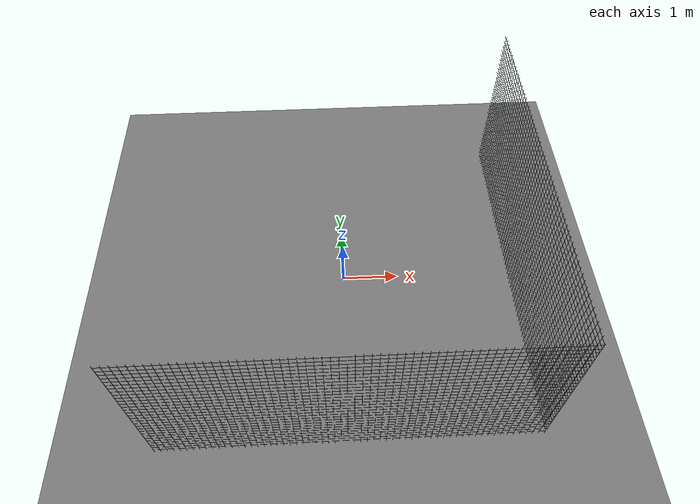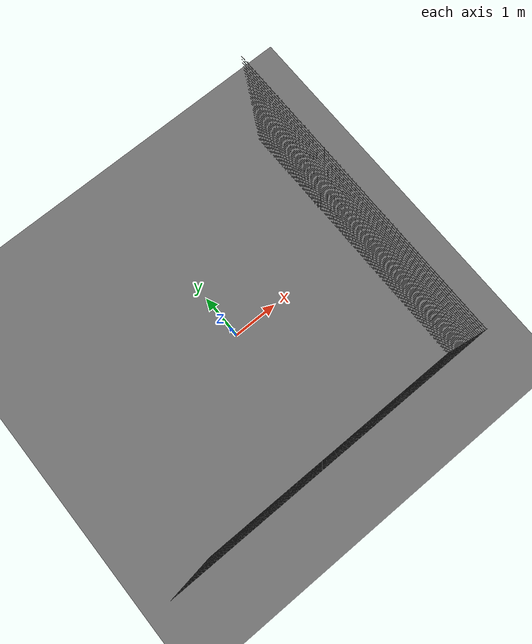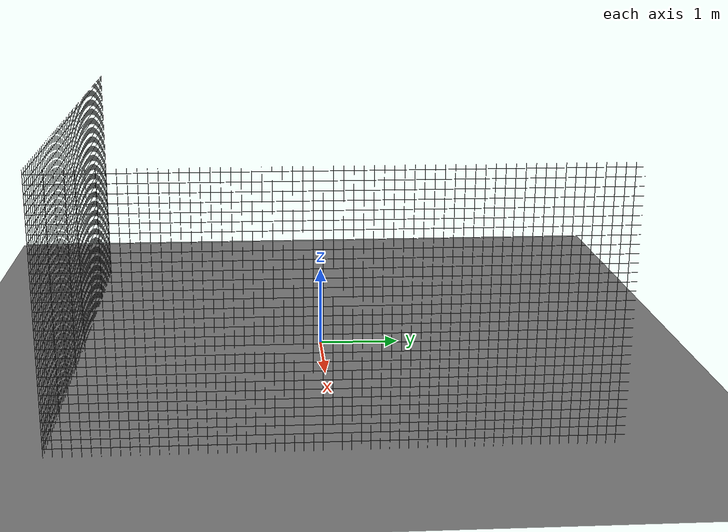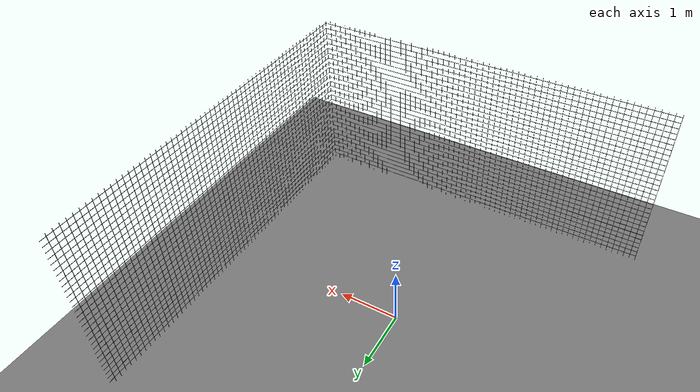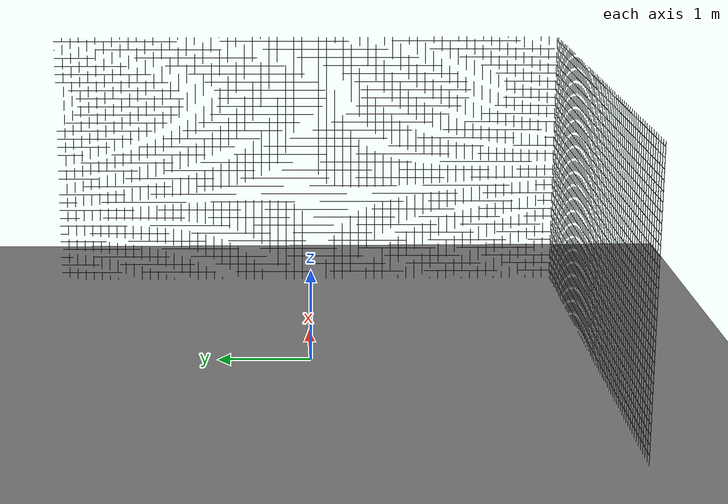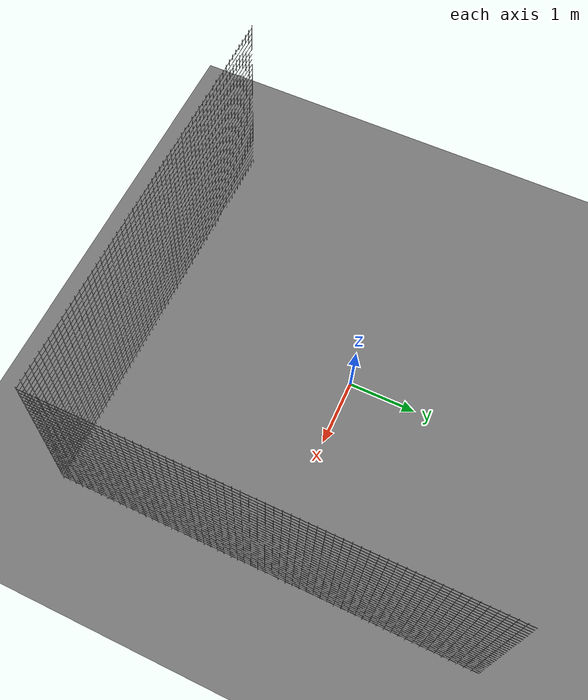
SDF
<sdf version="1.9">
 <world name="ecps295_lowbox_s19">
  <model name="ground_plane">
   <static>true</static>
   <link name="link">
    <collision name="collision">
     <geometry><plane><normal>0 0 1</normal><size>50 50</size></plane></geometry>
    </collision>
    <visual name="visual">
     <geometry><plane><normal>0 0 1</normal><size>50 50</size></plane></geometry>
     <material><ambient>0.5 0.5 0.5 1</ambient><diffuse>0.5 0.5 0.5 1</diffuse></material>
    </visual>
   </link>
  </model>
  <model name="net_s">
   <static>true</static>
   <link name="link">
    <collision name="c">
     <pose>0.000 -3.050 1.525 0 0 0</pose>
     <geometry><box><size>6.100 0.020 3.050</size></box></geometry>
    </collision>
    <visual name="v0">
     <pose>-3.050 -3.050 1.525 0 0 0.0000</pose>
     <geometry><box><size>0.004 0.004 3.050</size></box></geometry>
     <material><ambient>0.16 0.16 0.16 1</ambient><diffuse>0.16 0.16 0.16 1</diffuse></material>
    </visual>
    <visual name="v1">
     <pose>-2.950 -3.050 1.525 0 0 0.0000</pose>
     <geometry><box><size>0.004 0.004 3.050</size></box></geometry>
     <material><ambient>0.16 0.16 0.16 1</ambient><diffuse>0.16 0.16 0.16 1</diffuse></material>
    </visual>
    <visual name="v2">
     <pose>-2.850 -3.050 1.525 0 0 0.0000</pose>
     <geometry><box><size>0.004 0.004 3.050</size></box></geometry>
     <material><ambient>0.16 0.16 0.16 1</ambient><diffuse>0.16 0.16 0.16 1</diffuse></material>
    </visual>
    <visual name="v3">
     <pose>-2.750 -3.050 1.525 0 0 0.0000</pose>
     <geometry><box><size>0.004 0.004 3.050</size></box></geometry>
     <material><ambient>0.16 0.16 0.16 1</ambient><diffuse>0.16 0.16 0.16 1</diffuse></material>
    </visual>
    <visual name="v4">
     <pose>-2.650 -3.050 1.525 0 0 0.0000</pose>
     <geometry><box><size>0.004 0.004 3.050</size></box></geometry>
     <material><ambient>0.16 0.16 0.16 1</ambient><diffuse>0.16 0.16 0.16 1</diffuse></material>
    </visual>
    <visual name="v5">
     <pose>-2.550 -3.050 1.525 0 0 0.0000</pose>
     <geometry><box><size>0.004 0.004 3.050</size></box></geometry>
     <material><ambient>0.16 0.16 0.16 1</ambient><diffuse>0.16 0.16 0.16 1</diffuse></material>
    </visual>
    <visual name="v6">
     <pose>-2.450 -3.050 1.525 0 0 0.0000</pose>
     <geometry><box><size>0.004 0.004 3.050</size></box></geometry>
     <material><ambient>0.16 0.16 0.16 1</ambient><diffuse>0.16 0.16 0.16 1</diffuse></material>
    </visual>
    <visual name="v7">
     <pose>-2.350 -3.050 1.525 0 0 0.0000</pose>
     <geometry><box><size>0.004 0.004 3.050</size></box></geometry>
     <material><ambient>0.16 0.16 0.16 1</ambient><diffuse>0.16 0.16 0.16 1</diffuse></material>
    </visual>
    <visual name="v8">
     <pose>-2.250 -3.050 1.525 0 0 0.0000</pose>
     <geometry><box><size>0.004 0.004 3.050</size></box></geometry>
     <material><ambient>0.16 0.16 0.16 1</ambient><diffuse>0.16 0.16 0.16 1</diffuse></material>
    </visual>
    <visual name="v9">
     <pose>-2.150 -3.050 1.525 0 0 0.0000</pose>
     <geometry><box><size>0.004 0.004 3.050</size></box></geometry>
     <material><ambient>0.16 0.16 0.16 1</ambient><diffuse>0.16 0.16 0.16 1</diffuse></material>
    </visual>
    <visual name="v10">
     <pose>-2.050 -3.050 1.525 0 0 0.0000</pose>
     <geometry><box><size>0.004 0.004 3.050</size></box></geometry>
     <material><ambient>0.16 0.16 0.16 1</ambient><diffuse>0.16 0.16 0.16 1</diffuse></material>
    </visual>
    <visual name="v11">
     <pose>-1.950 -3.050 1.525 0 0 0.0000</pose>
     <geometry><box><size>0.004 0.004 3.050</size></box></geometry>
     <material><ambient>0.16 0.16 0.16 1</ambient><diffuse>0.16 0.16 0.16 1</diffuse></material>
    </visual>
    <visual name="v12">
     <pose>-1.850 -3.050 1.525 0 0 0.0000</pose>
     <geometry><box><size>0.004 0.004 3.050</size></box></geometry>
     <material><ambient>0.16 0.16 0.16 1</ambient><diffuse>0.16 0.16 0.16 1</diffuse></material>
    </visual>
    <visual name="v13">
     <pose>-1.750 -3.050 1.525 0 0 0.0000</pose>
     <geometry><box><size>0.004 0.004 3.050</size></box></geometry>
     <material><ambient>0.16 0.16 0.16 1</ambient><diffuse>0.16 0.16 0.16 1</diffuse></material>
    </visual>
    <visual name="v14">
     <pose>-1.650 -3.050 1.525 0 0 0.0000</pose>
     <geometry><box><size>0.004 0.004 3.050</size></box></geometry>
     <material><ambient>0.16 0.16 0.16 1</ambient><diffuse>0.16 0.16 0.16 1</diffuse></material>
    </visual>
    <visual name="v15">
     <pose>-1.550 -3.050 1.525 0 0 0.0000</pose>
     <geometry><box><size>0.004 0.004 3.050</size></box></geometry>
     <material><ambient>0.16 0.16 0.16 1</ambient><diffuse>0.16 0.16 0.16 1</diffuse></material>
    </visual>
    <visual name="v16">
     <pose>-1.450 -3.050 1.525 0 0 0.0000</pose>
     <geometry><box><size>0.004 0.004 3.050</size></box></geometry>
     <material><ambient>0.16 0.16 0.16 1</ambient><diffuse>0.16 0.16 0.16 1</diffuse></material>
    </visual>
    <visual name="v17">
     <pose>-1.350 -3.050 1.525 0 0 0.0000</pose>
     <geometry><box><size>0.004 0.004 3.050</size></box></geometry>
     <material><ambient>0.16 0.16 0.16 1</ambient><diffuse>0.16 0.16 0.16 1</diffuse></material>
    </visual>
    <visual name="v18">
     <pose>-1.250 -3.050 1.525 0 0 0.0000</pose>
     <geometry><box><size>0.004 0.004 3.050</size></box></geometry>
     <material><ambient>0.16 0.16 0.16 1</ambient><diffuse>0.16 0.16 0.16 1</diffuse></material>
    </visual>
    <visual name="v19">
     <pose>-1.150 -3.050 1.525 0 0 0.0000</pose>
     <geometry><box><size>0.004 0.004 3.050</size></box></geometry>
     <material><ambient>0.16 0.16 0.16 1</ambient><diffuse>0.16 0.16 0.16 1</diffuse></material>
    </visual>
    <visual name="v20">
     <pose>-1.050 -3.050 1.525 0 0 0.0000</pose>
     <geometry><box><size>0.004 0.004 3.050</size></box></geometry>
     <material><ambient>0.16 0.16 0.16 1</ambient><diffuse>0.16 0.16 0.16 1</diffuse></material>
    </visual>
    <visual name="v21">
     <pose>-0.950 -3.050 1.525 0 0 0.0000</pose>
     <geometry><box><size>0.004 0.004 3.050</size></box></geometry>
     <material><ambient>0.16 0.16 0.16 1</ambient><diffuse>0.16 0.16 0.16 1</diffuse></material>
    </visual>
    <visual name="v22">
     <pose>-0.850 -3.050 1.525 0 0 0.0000</pose>
     <geometry><box><size>0.004 0.004 3.050</size></box></geometry>
     <material><ambient>0.16 0.16 0.16 1</ambient><diffuse>0.16 0.16 0.16 1</diffuse></material>
    </visual>
    <visual name="v23">
     <pose>-0.750 -3.050 1.525 0 0 0.0000</pose>
     <geometry><box><size>0.004 0.004 3.050</size></box></geometry>
     <material><ambient>0.16 0.16 0.16 1</ambient><diffuse>0.16 0.16 0.16 1</diffuse></material>
    </visual>
    <visual name="v24">
     <pose>-0.650 -3.050 1.525 0 0 0.0000</pose>
     <geometry><box><size>0.004 0.004 3.050</size></box></geometry>
     <material><ambient>0.16 0.16 0.16 1</ambient><diffuse>0.16 0.16 0.16 1</diffuse></material>
    </visual>
    <visual name="v25">
     <pose>-0.550 -3.050 1.525 0 0 0.0000</pose>
     <geometry><box><size>0.004 0.004 3.050</size></box></geometry>
     <material><ambient>0.16 0.16 0.16 1</ambient><diffuse>0.16 0.16 0.16 1</diffuse></material>
    </visual>
    <visual name="v26">
     <pose>-0.450 -3.050 1.525 0 0 0.0000</pose>
     <geometry><box><size>0.004 0.004 3.050</size></box></geometry>
     <material><ambient>0.16 0.16 0.16 1</ambient><diffuse>0.16 0.16 0.16 1</diffuse></material>
    </visual>
    <visual name="v27">
     <pose>-0.350 -3.050 1.525 0 0 0.0000</pose>
     <geometry><box><size>0.004 0.004 3.050</size></box></geometry>
     <material><ambient>0.16 0.16 0.16 1</ambient><diffuse>0.16 0.16 0.16 1</diffuse></material>
    </visual>
    <visual name="v28">
     <pose>-0.250 -3.050 1.525 0 0 0.0000</pose>
     <geometry><box><size>0.004 0.004 3.050</size></box></geometry>
     <material><ambient>0.16 0.16 0.16 1</ambient><diffuse>0.16 0.16 0.16 1</diffuse></material>
    </visual>
    <visual name="v29">
     <pose>-0.150 -3.050 1.525 0 0 0.0000</pose>
     <geometry><box><size>0.004 0.004 3.050</size></box></geometry>
     <material><ambient>0.16 0.16 0.16 1</ambient><diffuse>0.16 0.16 0.16 1</diffuse></material>
    </visual>
    <visual name="v30">
     <pose>-0.050 -3.050 1.525 0 0 0.0000</pose>
     <geometry><box><size>0.004 0.004 3.050</size></box></geometry>
     <material><ambient>0.16 0.16 0.16 1</ambient><diffuse>0.16 0.16 0.16 1</diffuse></material>
    </visual>
    <visual name="v31">
     <pose>0.050 -3.050 1.525 0 0 0.0000</pose>
     <geometry><box><size>0.004 0.004 3.050</size></box></geometry>
     <material><ambient>0.16 0.16 0.16 1</ambient><diffuse>0.16 0.16 0.16 1</diffuse></material>
    </visual>
    <visual name="v32">
     <pose>0.150 -3.050 1.525 0 0 0.0000</pose>
     <geometry><box><size>0.004 0.004 3.050</size></box></geometry>
     <material><ambient>0.16 0.16 0.16 1</ambient><diffuse>0.16 0.16 0.16 1</diffuse></material>
    </visual>
    <visual name="v33">
     <pose>0.250 -3.050 1.525 0 0 0.0000</pose>
     <geometry><box><size>0.004 0.004 3.050</size></box></geometry>
     <material><ambient>0.16 0.16 0.16 1</ambient><diffuse>0.16 0.16 0.16 1</diffuse></material>
    </visual>
    <visual name="v34">
     <pose>0.350 -3.050 1.525 0 0 0.0000</pose>
     <geometry><box><size>0.004 0.004 3.050</size></box></geometry>
     <material><ambient>0.16 0.16 0.16 1</ambient><diffuse>0.16 0.16 0.16 1</diffuse></material>
    </visual>
    <visual name="v35">
     <pose>0.450 -3.050 1.525 0 0 0.0000</pose>
     <geometry><box><size>0.004 0.004 3.050</size></box></geometry>
     <material><ambient>0.16 0.16 0.16 1</ambient><diffuse>0.16 0.16 0.16 1</diffuse></material>
    </visual>
    <visual name="v36">
     <pose>0.550 -3.050 1.525 0 0 0.0000</pose>
     <geometry><box><size>0.004 0.004 3.050</size></box></geometry>
     <material><ambient>0.16 0.16 0.16 1</ambient><diffuse>0.16 0.16 0.16 1</diffuse></material>
    </visual>
    <visual name="v37">
     <pose>0.650 -3.050 1.525 0 0 0.0000</pose>
     <geometry><box><size>0.004 0.004 3.050</size></box></geometry>
     <material><ambient>0.16 0.16 0.16 1</ambient><diffuse>0.16 0.16 0.16 1</diffuse></material>
    </visual>
    <visual name="v38">
     <pose>0.750 -3.050 1.525 0 0 0.0000</pose>
     <geometry><box><size>0.004 0.004 3.050</size></box></geometry>
     <material><ambient>0.16 0.16 0.16 1</ambient><diffuse>0.16 0.16 0.16 1</diffuse></material>
    </visual>
    <visual name="v39">
     <pose>0.850 -3.050 1.525 0 0 0.0000</pose>
     <geometry><box><size>0.004 0.004 3.050</size></box></geometry>
     <material><ambient>0.16 0.16 0.16 1</ambient><diffuse>0.16 0.16 0.16 1</diffuse></material>
    </visual>
    <visual name="v40">
     <pose>0.950 -3.050 1.525 0 0 0.0000</pose>
     <geometry><box><size>0.004 0.004 3.050</size></box></geometry>
     <material><ambient>0.16 0.16 0.16 1</ambient><diffuse>0.16 0.16 0.16 1</diffuse></material>
    </visual>
    <visual name="v41">
     <pose>1.050 -3.050 1.525 0 0 0.0000</pose>
     <geometry><box><size>0.004 0.004 3.050</size></box></geometry>
     <material><ambient>0.16 0.16 0.16 1</ambient><diffuse>0.16 0.16 0.16 1</diffuse></material>
    </visual>
    <visual name="v42">
     <pose>1.150 -3.050 1.525 0 0 0.0000</pose>
     <geometry><box><size>0.004 0.004 3.050</size></box></geometry>
     <material><ambient>0.16 0.16 0.16 1</ambient><diffuse>0.16 0.16 0.16 1</diffuse></material>
    </visual>
    <visual name="v43">
     <pose>1.250 -3.050 1.525 0 0 0.0000</pose>
     <geometry><box><size>0.004 0.004 3.050</size></box></geometry>
     <material><ambient>0.16 0.16 0.16 1</ambient><diffuse>0.16 0.16 0.16 1</diffuse></material>
    </visual>
    <visual name="v44">
     <pose>1.350 -3.050 1.525 0 0 0.0000</pose>
     <geometry><box><size>0.004 0.004 3.050</size></box></geometry>
     <material><ambient>0.16 0.16 0.16 1</ambient><diffuse>0.16 0.16 0.16 1</diffuse></material>
    </visual>
    <visual name="v45">
     <pose>1.450 -3.050 1.525 0 0 0.0000</pose>
     <geometry><box><size>0.004 0.004 3.050</size></box></geometry>
     <material><ambient>0.16 0.16 0.16 1</ambient><diffuse>0.16 0.16 0.16 1</diffuse></material>
    </visual>
    <visual name="v46">
     <pose>1.550 -3.050 1.525 0 0 0.0000</pose>
     <geometry><box><size>0.004 0.004 3.050</size></box></geometry>
     <material><ambient>0.16 0.16 0.16 1</ambient><diffuse>0.16 0.16 0.16 1</diffuse></material>
    </visual>
    <visual name="v47">
     <pose>1.650 -3.050 1.525 0 0 0.0000</pose>
     <geometry><box><size>0.004 0.004 3.050</size></box></geometry>
     <material><ambient>0.16 0.16 0.16 1</ambient><diffuse>0.16 0.16 0.16 1</diffuse></material>
    </visual>
    <visual name="v48">
     <pose>1.750 -3.050 1.525 0 0 0.0000</pose>
     <geometry><box><size>0.004 0.004 3.050</size></box></geometry>
     <material><ambient>0.16 0.16 0.16 1</ambient><diffuse>0.16 0.16 0.16 1</diffuse></material>
    </visual>
    <visual name="v49">
     <pose>1.850 -3.050 1.525 0 0 0.0000</pose>
     <geometry><box><size>0.004 0.004 3.050</size></box></geometry>
     <material><ambient>0.16 0.16 0.16 1</ambient><diffuse>0.16 0.16 0.16 1</diffuse></material>
    </visual>
    <visual name="v50">
     <pose>1.950 -3.050 1.525 0 0 0.0000</pose>
     <geometry><box><size>0.004 0.004 3.050</size></box></geometry>
     <material><ambient>0.16 0.16 0.16 1</ambient><diffuse>0.16 0.16 0.16 1</diffuse></material>
    </visual>
    <visual name="v51">
     <pose>2.050 -3.050 1.525 0 0 0.0000</pose>
     <geometry><box><size>0.004 0.004 3.050</size></box></geometry>
     <material><ambient>0.16 0.16 0.16 1</ambient><diffuse>0.16 0.16 0.16 1</diffuse></material>
    </visual>
    <visual name="v52">
     <pose>2.150 -3.050 1.525 0 0 0.0000</pose>
     <geometry><box><size>0.004 0.004 3.050</size></box></geometry>
     <material><ambient>0.16 0.16 0.16 1</ambient><diffuse>0.16 0.16 0.16 1</diffuse></material>
    </visual>
    <visual name="v53">
     <pose>2.250 -3.050 1.525 0 0 0.0000</pose>
     <geometry><box><size>0.004 0.004 3.050</size></box></geometry>
     <material><ambient>0.16 0.16 0.16 1</ambient><diffuse>0.16 0.16 0.16 1</diffuse></material>
    </visual>
    <visual name="v54">
     <pose>2.350 -3.050 1.525 0 0 0.0000</pose>
     <geometry><box><size>0.004 0.004 3.050</size></box></geometry>
     <material><ambient>0.16 0.16 0.16 1</ambient><diffuse>0.16 0.16 0.16 1</diffuse></material>
    </visual>
    <visual name="v55">
     <pose>2.450 -3.050 1.525 0 0 0.0000</pose>
     <geometry><box><size>0.004 0.004 3.050</size></box></geometry>
     <material><ambient>0.16 0.16 0.16 1</ambient><diffuse>0.16 0.16 0.16 1</diffuse></material>
    </visual>
    <visual name="v56">
     <pose>2.550 -3.050 1.525 0 0 0.0000</pose>
     <geometry><box><size>0.004 0.004 3.050</size></box></geometry>
     <material><ambient>0.16 0.16 0.16 1</ambient><diffuse>0.16 0.16 0.16 1</diffuse></material>
    </visual>
    <visual name="v57">
     <pose>2.650 -3.050 1.525 0 0 0.0000</pose>
     <geometry><box><size>0.004 0.004 3.050</size></box></geometry>
     <material><ambient>0.16 0.16 0.16 1</ambient><diffuse>0.16 0.16 0.16 1</diffuse></material>
    </visual>
    <visual name="v58">
     <pose>2.750 -3.050 1.525 0 0 0.0000</pose>
     <geometry><box><size>0.004 0.004 3.050</size></box></geometry>
     <material><ambient>0.16 0.16 0.16 1</ambient><diffuse>0.16 0.16 0.16 1</diffuse></material>
    </visual>
    <visual name="v59">
     <pose>2.850 -3.050 1.525 0 0 0.0000</pose>
     <geometry><box><size>0.004 0.004 3.050</size></box></geometry>
     <material><ambient>0.16 0.16 0.16 1</ambient><diffuse>0.16 0.16 0.16 1</diffuse></material>
    </visual>
    <visual name="v60">
     <pose>2.950 -3.050 1.525 0 0 0.0000</pose>
     <geometry><box><size>0.004 0.004 3.050</size></box></geometry>
     <material><ambient>0.16 0.16 0.16 1</ambient><diffuse>0.16 0.16 0.16 1</diffuse></material>
    </visual>
    <visual name="h1">
     <pose>0.000 -3.050 0.100 0 0 0.0000</pose>
     <geometry><box><size>6.100 0.004 0.004</size></box></geometry>
     <material><ambient>0.16 0.16 0.16 1</ambient><diffuse>0.16 0.16 0.16 1</diffuse></material>
    </visual>
    <visual name="h2">
     <pose>0.000 -3.050 0.200 0 0 0.0000</pose>
     <geometry><box><size>6.100 0.004 0.004</size></box></geometry>
     <material><ambient>0.16 0.16 0.16 1</ambient><diffuse>0.16 0.16 0.16 1</diffuse></material>
    </visual>
    <visual name="h3">
     <pose>0.000 -3.050 0.300 0 0 0.0000</pose>
     <geometry><box><size>6.100 0.004 0.004</size></box></geometry>
     <material><ambient>0.16 0.16 0.16 1</ambient><diffuse>0.16 0.16 0.16 1</diffuse></material>
    </visual>
    <visual name="h4">
     <pose>0.000 -3.050 0.400 0 0 0.0000</pose>
     <geometry><box><size>6.100 0.004 0.004</size></box></geometry>
     <material><ambient>0.16 0.16 0.16 1</ambient><diffuse>0.16 0.16 0.16 1</diffuse></material>
    </visual>
    <visual name="h5">
     <pose>0.000 -3.050 0.500 0 0 0.0000</pose>
     <geometry><box><size>6.100 0.004 0.004</size></box></geometry>
     <material><ambient>0.16 0.16 0.16 1</ambient><diffuse>0.16 0.16 0.16 1</diffuse></material>
    </visual>
    <visual name="h6">
     <pose>0.000 -3.050 0.600 0 0 0.0000</pose>
     <geometry><box><size>6.100 0.004 0.004</size></box></geometry>
     <material><ambient>0.16 0.16 0.16 1</ambient><diffuse>0.16 0.16 0.16 1</diffuse></material>
    </visual>
    <visual name="h7">
     <pose>0.000 -3.050 0.700 0 0 0.0000</pose>
     <geometry><box><size>6.100 0.004 0.004</size></box></geometry>
     <material><ambient>0.16 0.16 0.16 1</ambient><diffuse>0.16 0.16 0.16 1</diffuse></material>
    </visual>
    <visual name="h8">
     <pose>0.000 -3.050 0.800 0 0 0.0000</pose>
     <geometry><box><size>6.100 0.004 0.004</size></box></geometry>
     <material><ambient>0.16 0.16 0.16 1</ambient><diffuse>0.16 0.16 0.16 1</diffuse></material>
    </visual>
    <visual name="h9">
     <pose>0.000 -3.050 0.900 0 0 0.0000</pose>
     <geometry><box><size>6.100 0.004 0.004</size></box></geometry>
     <material><ambient>0.16 0.16 0.16 1</ambient><diffuse>0.16 0.16 0.16 1</diffuse></material>
    </visual>
    <visual name="h10">
     <pose>0.000 -3.050 1.000 0 0 0.0000</pose>
     <geometry><box><size>6.100 0.004 0.004</size></box></geometry>
     <material><ambient>0.16 0.16 0.16 1</ambient><diffuse>0.16 0.16 0.16 1</diffuse></material>
    </visual>
    <visual name="h11">
     <pose>0.000 -3.050 1.100 0 0 0.0000</pose>
     <geometry><box><size>6.100 0.004 0.004</size></box></geometry>
     <material><ambient>0.16 0.16 0.16 1</ambient><diffuse>0.16 0.16 0.16 1</diffuse></material>
    </visual>
    <visual name="h12">
     <pose>0.000 -3.050 1.200 0 0 0.0000</pose>
     <geometry><box><size>6.100 0.004 0.004</size></box></geometry>
     <material><ambient>0.16 0.16 0.16 1</ambient><diffuse>0.16 0.16 0.16 1</diffuse></material>
    </visual>
    <visual name="h13">
     <pose>0.000 -3.050 1.300 0 0 0.0000</pose>
     <geometry><box><size>6.100 0.004 0.004</size></box></geometry>
     <material><ambient>0.16 0.16 0.16 1</ambient><diffuse>0.16 0.16 0.16 1</diffuse></material>
    </visual>
    <visual name="h14">
     <pose>0.000 -3.050 1.400 0 0 0.0000</pose>
     <geometry><box><size>6.100 0.004 0.004</size></box></geometry>
     <material><ambient>0.16 0.16 0.16 1</ambient><diffuse>0.16 0.16 0.16 1</diffuse></material>
    </visual>
    <visual name="h15">
     <pose>0.000 -3.050 1.500 0 0 0.0000</pose>
     <geometry><box><size>6.100 0.004 0.004</size></box></geometry>
     <material><ambient>0.16 0.16 0.16 1</ambient><diffuse>0.16 0.16 0.16 1</diffuse></material>
    </visual>
    <visual name="h16">
     <pose>0.000 -3.050 1.600 0 0 0.0000</pose>
     <geometry><box><size>6.100 0.004 0.004</size></box></geometry>
     <material><ambient>0.16 0.16 0.16 1</ambient><diffuse>0.16 0.16 0.16 1</diffuse></material>
    </visual>
    <visual name="h17">
     <pose>0.000 -3.050 1.700 0 0 0.0000</pose>
     <geometry><box><size>6.100 0.004 0.004</size></box></geometry>
     <material><ambient>0.16 0.16 0.16 1</ambient><diffuse>0.16 0.16 0.16 1</diffuse></material>
    </visual>
    <visual name="h18">
     <pose>0.000 -3.050 1.800 0 0 0.0000</pose>
     <geometry><box><size>6.100 0.004 0.004</size></box></geometry>
     <material><ambient>0.16 0.16 0.16 1</ambient><diffuse>0.16 0.16 0.16 1</diffuse></material>
    </visual>
    <visual name="h19">
     <pose>0.000 -3.050 1.900 0 0 0.0000</pose>
     <geometry><box><size>6.100 0.004 0.004</size></box></geometry>
     <material><ambient>0.16 0.16 0.16 1</ambient><diffuse>0.16 0.16 0.16 1</diffuse></material>
    </visual>
    <visual name="h20">
     <pose>0.000 -3.050 2.000 0 0 0.0000</pose>
     <geometry><box><size>6.100 0.004 0.004</size></box></geometry>
     <material><ambient>0.16 0.16 0.16 1</ambient><diffuse>0.16 0.16 0.16 1</diffuse></material>
    </visual>
    <visual name="h21">
     <pose>0.000 -3.050 2.100 0 0 0.0000</pose>
     <geometry><box><size>6.100 0.004 0.004</size></box></geometry>
     <material><ambient>0.16 0.16 0.16 1</ambient><diffuse>0.16 0.16 0.16 1</diffuse></material>
    </visual>
    <visual name="h22">
     <pose>0.000 -3.050 2.200 0 0 0.0000</pose>
     <geometry><box><size>6.100 0.004 0.004</size></box></geometry>
     <material><ambient>0.16 0.16 0.16 1</ambient><diffuse>0.16 0.16 0.16 1</diffuse></material>
    </visual>
    <visual name="h23">
     <pose>0.000 -3.050 2.300 0 0 0.0000</pose>
     <geometry><box><size>6.100 0.004 0.004</size></box></geometry>
     <material><ambient>0.16 0.16 0.16 1</ambient><diffuse>0.16 0.16 0.16 1</diffuse></material>
    </visual>
    <visual name="h24">
     <pose>0.000 -3.050 2.400 0 0 0.0000</pose>
     <geometry><box><size>6.100 0.004 0.004</size></box></geometry>
     <material><ambient>0.16 0.16 0.16 1</ambient><diffuse>0.16 0.16 0.16 1</diffuse></material>
    </visual>
    <visual name="h25">
     <pose>0.000 -3.050 2.500 0 0 0.0000</pose>
     <geometry><box><size>6.100 0.004 0.004</size></box></geometry>
     <material><ambient>0.16 0.16 0.16 1</ambient><diffuse>0.16 0.16 0.16 1</diffuse></material>
    </visual>
    <visual name="h26">
     <pose>0.000 -3.050 2.600 0 0 0.0000</pose>
     <geometry><box><size>6.100 0.004 0.004</size></box></geometry>
     <material><ambient>0.16 0.16 0.16 1</ambient><diffuse>0.16 0.16 0.16 1</diffuse></material>
    </visual>
    <visual name="h27">
     <pose>0.000 -3.050 2.700 0 0 0.0000</pose>
     <geometry><box><size>6.100 0.004 0.004</size></box></geometry>
     <material><ambient>0.16 0.16 0.16 1</ambient><diffuse>0.16 0.16 0.16 1</diffuse></material>
    </visual>
    <visual name="h28">
     <pose>0.000 -3.050 2.800 0 0 0.0000</pose>
     <geometry><box><size>6.100 0.004 0.004</size></box></geometry>
     <material><ambient>0.16 0.16 0.16 1</ambient><diffuse>0.16 0.16 0.16 1</diffuse></material>
    </visual>
    <visual name="h29">
     <pose>0.000 -3.050 2.900 0 0 0.0000</pose>
     <geometry><box><size>6.100 0.004 0.004</size></box></geometry>
     <material><ambient>0.16 0.16 0.16 1</ambient><diffuse>0.16 0.16 0.16 1</diffuse></material>
    </visual>
    <visual name="h30">
     <pose>0.000 -3.050 3.000 0 0 0.0000</pose>
     <geometry><box><size>6.100 0.004 0.004</size></box></geometry>
     <material><ambient>0.16 0.16 0.16 1</ambient><diffuse>0.16 0.16 0.16 1</diffuse></material>
    </visual>
   </link>
  </model>
  <model name="net_e">
   <static>true</static>
   <link name="link">
    <collision name="c">
     <pose>3.050 0.000 1.525 0 0 0</pose>
     <geometry><box><size>0.020 6.100 3.050</size></box></geometry>
    </collision>
    <visual name="v0">
     <pose>3.050 -3.050 1.525 0 0 0.0000</pose>
     <geometry><box><size>0.004 0.004 3.050</size></box></geometry>
     <material><ambient>0.16 0.16 0.16 1</ambient><diffuse>0.16 0.16 0.16 1</diffuse></material>
    </visual>
    <visual name="v1">
     <pose>3.050 -2.950 1.525 0 0 0.0000</pose>
     <geometry><box><size>0.004 0.004 3.050</size></box></geometry>
     <material><ambient>0.16 0.16 0.16 1</ambient><diffuse>0.16 0.16 0.16 1</diffuse></material>
    </visual>
    <visual name="v2">
     <pose>3.050 -2.850 1.525 0 0 0.0000</pose>
     <geometry><box><size>0.004 0.004 3.050</size></box></geometry>
     <material><ambient>0.16 0.16 0.16 1</ambient><diffuse>0.16 0.16 0.16 1</diffuse></material>
    </visual>
    <visual name="v3">
     <pose>3.050 -2.750 1.525 0 0 0.0000</pose>
     <geometry><box><size>0.004 0.004 3.050</size></box></geometry>
     <material><ambient>0.16 0.16 0.16 1</ambient><diffuse>0.16 0.16 0.16 1</diffuse></material>
    </visual>
    <visual name="v4">
     <pose>3.050 -2.650 1.525 0 0 0.0000</pose>
     <geometry><box><size>0.004 0.004 3.050</size></box></geometry>
     <material><ambient>0.16 0.16 0.16 1</ambient><diffuse>0.16 0.16 0.16 1</diffuse></material>
    </visual>
    <visual name="v5">
     <pose>3.050 -2.550 1.525 0 0 0.0000</pose>
     <geometry><box><size>0.004 0.004 3.050</size></box></geometry>
     <material><ambient>0.16 0.16 0.16 1</ambient><diffuse>0.16 0.16 0.16 1</diffuse></material>
    </visual>
    <visual name="v6">
     <pose>3.050 -2.450 1.525 0 0 0.0000</pose>
     <geometry><box><size>0.004 0.004 3.050</size></box></geometry>
     <material><ambient>0.16 0.16 0.16 1</ambient><diffuse>0.16 0.16 0.16 1</diffuse></material>
    </visual>
    <visual name="v7">
     <pose>3.050 -2.350 1.525 0 0 0.0000</pose>
     <geometry><box><size>0.004 0.004 3.050</size></box></geometry>
     <material><ambient>0.16 0.16 0.16 1</ambient><diffuse>0.16 0.16 0.16 1</diffuse></material>
    </visual>
    <visual name="v8">
     <pose>3.050 -2.250 1.525 0 0 0.0000</pose>
     <geometry><box><size>0.004 0.004 3.050</size></box></geometry>
     <material><ambient>0.16 0.16 0.16 1</ambient><diffuse>0.16 0.16 0.16 1</diffuse></material>
    </visual>
    <visual name="v9">
     <pose>3.050 -2.150 1.525 0 0 0.0000</pose>
     <geometry><box><size>0.004 0.004 3.050</size></box></geometry>
     <material><ambient>0.16 0.16 0.16 1</ambient><diffuse>0.16 0.16 0.16 1</diffuse></material>
    </visual>
    <visual name="v10">
     <pose>3.050 -2.050 1.525 0 0 0.0000</pose>
     <geometry><box><size>0.004 0.004 3.050</size></box></geometry>
     <material><ambient>0.16 0.16 0.16 1</ambient><diffuse>0.16 0.16 0.16 1</diffuse></material>
    </visual>
    <visual name="v11">
     <pose>3.050 -1.950 1.525 0 0 0.0000</pose>
     <geometry><box><size>0.004 0.004 3.050</size></box></geometry>
     <material><ambient>0.16 0.16 0.16 1</ambient><diffuse>0.16 0.16 0.16 1</diffuse></material>
    </visual>
    <visual name="v12">
     <pose>3.050 -1.850 1.525 0 0 0.0000</pose>
     <geometry><box><size>0.004 0.004 3.050</size></box></geometry>
     <material><ambient>0.16 0.16 0.16 1</ambient><diffuse>0.16 0.16 0.16 1</diffuse></material>
    </visual>
    <visual name="v13">
     <pose>3.050 -1.750 1.525 0 0 0.0000</pose>
     <geometry><box><size>0.004 0.004 3.050</size></box></geometry>
     <material><ambient>0.16 0.16 0.16 1</ambient><diffuse>0.16 0.16 0.16 1</diffuse></material>
    </visual>
    <visual name="v14">
     <pose>3.050 -1.650 1.525 0 0 0.0000</pose>
     <geometry><box><size>0.004 0.004 3.050</size></box></geometry>
     <material><ambient>0.16 0.16 0.16 1</ambient><diffuse>0.16 0.16 0.16 1</diffuse></material>
    </visual>
    <visual name="v15">
     <pose>3.050 -1.550 1.525 0 0 0.0000</pose>
     <geometry><box><size>0.004 0.004 3.050</size></box></geometry>
     <material><ambient>0.16 0.16 0.16 1</ambient><diffuse>0.16 0.16 0.16 1</diffuse></material>
    </visual>
    <visual name="v16">
     <pose>3.050 -1.450 1.525 0 0 0.0000</pose>
     <geometry><box><size>0.004 0.004 3.050</size></box></geometry>
     <material><ambient>0.16 0.16 0.16 1</ambient><diffuse>0.16 0.16 0.16 1</diffuse></material>
    </visual>
    <visual name="v17">
     <pose>3.050 -1.350 1.525 0 0 0.0000</pose>
     <geometry><box><size>0.004 0.004 3.050</size></box></geometry>
     <material><ambient>0.16 0.16 0.16 1</ambient><diffuse>0.16 0.16 0.16 1</diffuse></material>
    </visual>
    <visual name="v18">
     <pose>3.050 -1.250 1.525 0 0 0.0000</pose>
     <geometry><box><size>0.004 0.004 3.050</size></box></geometry>
     <material><ambient>0.16 0.16 0.16 1</ambient><diffuse>0.16 0.16 0.16 1</diffuse></material>
    </visual>
    <visual name="v19">
     <pose>3.050 -1.150 1.525 0 0 0.0000</pose>
     <geometry><box><size>0.004 0.004 3.050</size></box></geometry>
     <material><ambient>0.16 0.16 0.16 1</ambient><diffuse>0.16 0.16 0.16 1</diffuse></material>
    </visual>
    <visual name="v20">
     <pose>3.050 -1.050 1.525 0 0 0.0000</pose>
     <geometry><box><size>0.004 0.004 3.050</size></box></geometry>
     <material><ambient>0.16 0.16 0.16 1</ambient><diffuse>0.16 0.16 0.16 1</diffuse></material>
    </visual>
    <visual name="v21">
     <pose>3.050 -0.950 1.525 0 0 0.0000</pose>
     <geometry><box><size>0.004 0.004 3.050</size></box></geometry>
     <material><ambient>0.16 0.16 0.16 1</ambient><diffuse>0.16 0.16 0.16 1</diffuse></material>
    </visual>
    <visual name="v22">
     <pose>3.050 -0.850 1.525 0 0 0.0000</pose>
     <geometry><box><size>0.004 0.004 3.050</size></box></geometry>
     <material><ambient>0.16 0.16 0.16 1</ambient><diffuse>0.16 0.16 0.16 1</diffuse></material>
    </visual>
    <visual name="v23">
     <pose>3.050 -0.750 1.525 0 0 0.0000</pose>
     <geometry><box><size>0.004 0.004 3.050</size></box></geometry>
     <material><ambient>0.16 0.16 0.16 1</ambient><diffuse>0.16 0.16 0.16 1</diffuse></material>
    </visual>
    <visual name="v24">
     <pose>3.050 -0.650 1.525 0 0 0.0000</pose>
     <geometry><box><size>0.004 0.004 3.050</size></box></geometry>
     <material><ambient>0.16 0.16 0.16 1</ambient><diffuse>0.16 0.16 0.16 1</diffuse></material>
    </visual>
    <visual name="v25">
     <pose>3.050 -0.550 1.525 0 0 0.0000</pose>
     <geometry><box><size>0.004 0.004 3.050</size></box></geometry>
     <material><ambient>0.16 0.16 0.16 1</ambient><diffuse>0.16 0.16 0.16 1</diffuse></material>
    </visual>
    <visual name="v26">
     <pose>3.050 -0.450 1.525 0 0 0.0000</pose>
     <geometry><box><size>0.004 0.004 3.050</size></box></geometry>
     <material><ambient>0.16 0.16 0.16 1</ambient><diffuse>0.16 0.16 0.16 1</diffuse></material>
    </visual>
    <visual name="v27">
     <pose>3.050 -0.350 1.525 0 0 0.0000</pose>
     <geometry><box><size>0.004 0.004 3.050</size></box></geometry>
     <material><ambient>0.16 0.16 0.16 1</ambient><diffuse>0.16 0.16 0.16 1</diffuse></material>
    </visual>
    <visual name="v28">
     <pose>3.050 -0.250 1.525 0 0 0.0000</pose>
     <geometry><box><size>0.004 0.004 3.050</size></box></geometry>
     <material><ambient>0.16 0.16 0.16 1</ambient><diffuse>0.16 0.16 0.16 1</diffuse></material>
    </visual>
    <visual name="v29">
     <pose>3.050 -0.150 1.525 0 0 0.0000</pose>
     <geometry><box><size>0.004 0.004 3.050</size></box></geometry>
     <material><ambient>0.16 0.16 0.16 1</ambient><diffuse>0.16 0.16 0.16 1</diffuse></material>
    </visual>
    <visual name="v30">
     <pose>3.050 -0.050 1.525 0 0 0.0000</pose>
     <geometry><box><size>0.004 0.004 3.050</size></box></geometry>
     <material><ambient>0.16 0.16 0.16 1</ambient><diffuse>0.16 0.16 0.16 1</diffuse></material>
    </visual>
    <visual name="v31">
     <pose>3.050 0.050 1.525 0 0 0.0000</pose>
     <geometry><box><size>0.004 0.004 3.050</size></box></geometry>
     <material><ambient>0.16 0.16 0.16 1</ambient><diffuse>0.16 0.16 0.16 1</diffuse></material>
    </visual>
    <visual name="v32">
     <pose>3.050 0.150 1.525 0 0 0.0000</pose>
     <geometry><box><size>0.004 0.004 3.050</size></box></geometry>
     <material><ambient>0.16 0.16 0.16 1</ambient><diffuse>0.16 0.16 0.16 1</diffuse></material>
    </visual>
    <visual name="v33">
     <pose>3.050 0.250 1.525 0 0 0.0000</pose>
     <geometry><box><size>0.004 0.004 3.050</size></box></geometry>
     <material><ambient>0.16 0.16 0.16 1</ambient><diffuse>0.16 0.16 0.16 1</diffuse></material>
    </visual>
    <visual name="v34">
     <pose>3.050 0.350 1.525 0 0 0.0000</pose>
     <geometry><box><size>0.004 0.004 3.050</size></box></geometry>
     <material><ambient>0.16 0.16 0.16 1</ambient><diffuse>0.16 0.16 0.16 1</diffuse></material>
    </visual>
    <visual name="v35">
     <pose>3.050 0.450 1.525 0 0 0.0000</pose>
     <geometry><box><size>0.004 0.004 3.050</size></box></geometry>
     <material><ambient>0.16 0.16 0.16 1</ambient><diffuse>0.16 0.16 0.16 1</diffuse></material>
    </visual>
    <visual name="v36">
     <pose>3.050 0.550 1.525 0 0 0.0000</pose>
     <geometry><box><size>0.004 0.004 3.050</size></box></geometry>
     <material><ambient>0.16 0.16 0.16 1</ambient><diffuse>0.16 0.16 0.16 1</diffuse></material>
    </visual>
    <visual name="v37">
     <pose>3.050 0.650 1.525 0 0 0.0000</pose>
     <geometry><box><size>0.004 0.004 3.050</size></box></geometry>
     <material><ambient>0.16 0.16 0.16 1</ambient><diffuse>0.16 0.16 0.16 1</diffuse></material>
    </visual>
    <visual name="v38">
     <pose>3.050 0.750 1.525 0 0 0.0000</pose>
     <geometry><box><size>0.004 0.004 3.050</size></box></geometry>
     <material><ambient>0.16 0.16 0.16 1</ambient><diffuse>0.16 0.16 0.16 1</diffuse></material>
    </visual>
    <visual name="v39">
     <pose>3.050 0.850 1.525 0 0 0.0000</pose>
     <geometry><box><size>0.004 0.004 3.050</size></box></geometry>
     <material><ambient>0.16 0.16 0.16 1</ambient><diffuse>0.16 0.16 0.16 1</diffuse></material>
    </visual>
    <visual name="v40">
     <pose>3.050 0.950 1.525 0 0 0.0000</pose>
     <geometry><box><size>0.004 0.004 3.050</size></box></geometry>
     <material><ambient>0.16 0.16 0.16 1</ambient><diffuse>0.16 0.16 0.16 1</diffuse></material>
    </visual>
    <visual name="v41">
     <pose>3.050 1.050 1.525 0 0 0.0000</pose>
     <geometry><box><size>0.004 0.004 3.050</size></box></geometry>
     <material><ambient>0.16 0.16 0.16 1</ambient><diffuse>0.16 0.16 0.16 1</diffuse></material>
    </visual>
    <visual name="v42">
     <pose>3.050 1.150 1.525 0 0 0.0000</pose>
     <geometry><box><size>0.004 0.004 3.050</size></box></geometry>
     <material><ambient>0.16 0.16 0.16 1</ambient><diffuse>0.16 0.16 0.16 1</diffuse></material>
    </visual>
    <visual name="v43">
     <pose>3.050 1.250 1.525 0 0 0.0000</pose>
     <geometry><box><size>0.004 0.004 3.050</size></box></geometry>
     <material><ambient>0.16 0.16 0.16 1</ambient><diffuse>0.16 0.16 0.16 1</diffuse></material>
    </visual>
    <visual name="v44">
     <pose>3.050 1.350 1.525 0 0 0.0000</pose>
     <geometry><box><size>0.004 0.004 3.050</size></box></geometry>
     <material><ambient>0.16 0.16 0.16 1</ambient><diffuse>0.16 0.16 0.16 1</diffuse></material>
    </visual>
    <visual name="v45">
     <pose>3.050 1.450 1.525 0 0 0.0000</pose>
     <geometry><box><size>0.004 0.004 3.050</size></box></geometry>
     <material><ambient>0.16 0.16 0.16 1</ambient><diffuse>0.16 0.16 0.16 1</diffuse></material>
    </visual>
    <visual name="v46">
     <pose>3.050 1.550 1.525 0 0 0.0000</pose>
     <geometry><box><size>0.004 0.004 3.050</size></box></geometry>
     <material><ambient>0.16 0.16 0.16 1</ambient><diffuse>0.16 0.16 0.16 1</diffuse></material>
    </visual>
    <visual name="v47">
     <pose>3.050 1.650 1.525 0 0 0.0000</pose>
     <geometry><box><size>0.004 0.004 3.050</size></box></geometry>
     <material><ambient>0.16 0.16 0.16 1</ambient><diffuse>0.16 0.16 0.16 1</diffuse></material>
    </visual>
    <visual name="v48">
     <pose>3.050 1.750 1.525 0 0 0.0000</pose>
     <geometry><box><size>0.004 0.004 3.050</size></box></geometry>
     <material><ambient>0.16 0.16 0.16 1</ambient><diffuse>0.16 0.16 0.16 1</diffuse></material>
    </visual>
    <visual name="v49">
     <pose>3.050 1.850 1.525 0 0 0.0000</pose>
     <geometry><box><size>0.004 0.004 3.050</size></box></geometry>
     <material><ambient>0.16 0.16 0.16 1</ambient><diffuse>0.16 0.16 0.16 1</diffuse></material>
    </visual>
    <visual name="v50">
     <pose>3.050 1.950 1.525 0 0 0.0000</pose>
     <geometry><box><size>0.004 0.004 3.050</size></box></geometry>
     <material><ambient>0.16 0.16 0.16 1</ambient><diffuse>0.16 0.16 0.16 1</diffuse></material>
    </visual>
    <visual name="v51">
     <pose>3.050 2.050 1.525 0 0 0.0000</pose>
     <geometry><box><size>0.004 0.004 3.050</size></box></geometry>
     <material><ambient>0.16 0.16 0.16 1</ambient><diffuse>0.16 0.16 0.16 1</diffuse></material>
    </visual>
    <visual name="v52">
     <pose>3.050 2.150 1.525 0 0 0.0000</pose>
     <geometry><box><size>0.004 0.004 3.050</size></box></geometry>
     <material><ambient>0.16 0.16 0.16 1</ambient><diffuse>0.16 0.16 0.16 1</diffuse></material>
    </visual>
    <visual name="v53">
     <pose>3.050 2.250 1.525 0 0 0.0000</pose>
     <geometry><box><size>0.004 0.004 3.050</size></box></geometry>
     <material><ambient>0.16 0.16 0.16 1</ambient><diffuse>0.16 0.16 0.16 1</diffuse></material>
    </visual>
    <visual name="v54">
     <pose>3.050 2.350 1.525 0 0 0.0000</pose>
     <geometry><box><size>0.004 0.004 3.050</size></box></geometry>
     <material><ambient>0.16 0.16 0.16 1</ambient><diffuse>0.16 0.16 0.16 1</diffuse></material>
    </visual>
    <visual name="v55">
     <pose>3.050 2.450 1.525 0 0 0.0000</pose>
     <geometry><box><size>0.004 0.004 3.050</size></box></geometry>
     <material><ambient>0.16 0.16 0.16 1</ambient><diffuse>0.16 0.16 0.16 1</diffuse></material>
    </visual>
    <visual name="v56">
     <pose>3.050 2.550 1.525 0 0 0.0000</pose>
     <geometry><box><size>0.004 0.004 3.050</size></box></geometry>
     <material><ambient>0.16 0.16 0.16 1</ambient><diffuse>0.16 0.16 0.16 1</diffuse></material>
    </visual>
    <visual name="v57">
     <pose>3.050 2.650 1.525 0 0 0.0000</pose>
     <geometry><box><size>0.004 0.004 3.050</size></box></geometry>
     <material><ambient>0.16 0.16 0.16 1</ambient><diffuse>0.16 0.16 0.16 1</diffuse></material>
    </visual>
    <visual name="v58">
     <pose>3.050 2.750 1.525 0 0 0.0000</pose>
     <geometry><box><size>0.004 0.004 3.050</size></box></geometry>
     <material><ambient>0.16 0.16 0.16 1</ambient><diffuse>0.16 0.16 0.16 1</diffuse></material>
    </visual>
    <visual name="v59">
     <pose>3.050 2.850 1.525 0 0 0.0000</pose>
     <geometry><box><size>0.004 0.004 3.050</size></box></geometry>
     <material><ambient>0.16 0.16 0.16 1</ambient><diffuse>0.16 0.16 0.16 1</diffuse></material>
    </visual>
    <visual name="v60">
     <pose>3.050 2.950 1.525 0 0 0.0000</pose>
     <geometry><box><size>0.004 0.004 3.050</size></box></geometry>
     <material><ambient>0.16 0.16 0.16 1</ambient><diffuse>0.16 0.16 0.16 1</diffuse></material>
    </visual>
    <visual name="h1">
     <pose>3.050 0.000 0.100 0 0 0.0000</pose>
     <geometry><box><size>0.004 6.100 0.004</size></box></geometry>
     <material><ambient>0.16 0.16 0.16 1</ambient><diffuse>0.16 0.16 0.16 1</diffuse></material>
    </visual>
    <visual name="h2">
     <pose>3.050 0.000 0.200 0 0 0.0000</pose>
     <geometry><box><size>0.004 6.100 0.004</size></box></geometry>
     <material><ambient>0.16 0.16 0.16 1</ambient><diffuse>0.16 0.16 0.16 1</diffuse></material>
    </visual>
    <visual name="h3">
     <pose>3.050 0.000 0.300 0 0 0.0000</pose>
     <geometry><box><size>0.004 6.100 0.004</size></box></geometry>
     <material><ambient>0.16 0.16 0.16 1</ambient><diffuse>0.16 0.16 0.16 1</diffuse></material>
    </visual>
    <visual name="h4">
     <pose>3.050 0.000 0.400 0 0 0.0000</pose>
     <geometry><box><size>0.004 6.100 0.004</size></box></geometry>
     <material><ambient>0.16 0.16 0.16 1</ambient><diffuse>0.16 0.16 0.16 1</diffuse></material>
    </visual>
    <visual name="h5">
     <pose>3.050 0.000 0.500 0 0 0.0000</pose>
     <geometry><box><size>0.004 6.100 0.004</size></box></geometry>
     <material><ambient>0.16 0.16 0.16 1</ambient><diffuse>0.16 0.16 0.16 1</diffuse></material>
    </visual>
    <visual name="h6">
     <pose>3.050 0.000 0.600 0 0 0.0000</pose>
     <geometry><box><size>0.004 6.100 0.004</size></box></geometry>
     <material><ambient>0.16 0.16 0.16 1</ambient><diffuse>0.16 0.16 0.16 1</diffuse></material>
    </visual>
    <visual name="h7">
     <pose>3.050 0.000 0.700 0 0 0.0000</pose>
     <geometry><box><size>0.004 6.100 0.004</size></box></geometry>
     <material><ambient>0.16 0.16 0.16 1</ambient><diffuse>0.16 0.16 0.16 1</diffuse></material>
    </visual>
    <visual name="h8">
     <pose>3.050 0.000 0.800 0 0 0.0000</pose>
     <geometry><box><size>0.004 6.100 0.004</size></box></geometry>
     <material><ambient>0.16 0.16 0.16 1</ambient><diffuse>0.16 0.16 0.16 1</diffuse></material>
    </visual>
    <visual name="h9">
     <pose>3.050 0.000 0.900 0 0 0.0000</pose>
     <geometry><box><size>0.004 6.100 0.004</size></box></geometry>
     <material><ambient>0.16 0.16 0.16 1</ambient><diffuse>0.16 0.16 0.16 1</diffuse></material>
    </visual>
    <visual name="h10">
     <pose>3.050 0.000 1.000 0 0 0.0000</pose>
     <geometry><box><size>0.004 6.100 0.004</size></box></geometry>
     <material><ambient>0.16 0.16 0.16 1</ambient><diffuse>0.16 0.16 0.16 1</diffuse></material>
    </visual>
    <visual name="h11">
     <pose>3.050 0.000 1.100 0 0 0.0000</pose>
     <geometry><box><size>0.004 6.100 0.004</size></box></geometry>
     <material><ambient>0.16 0.16 0.16 1</ambient><diffuse>0.16 0.16 0.16 1</diffuse></material>
    </visual>
    <visual name="h12">
     <pose>3.050 0.000 1.200 0 0 0.0000</pose>
     <geometry><box><size>0.004 6.100 0.004</size></box></geometry>
     <material><ambient>0.16 0.16 0.16 1</ambient><diffuse>0.16 0.16 0.16 1</diffuse></material>
    </visual>
    <visual name="h13">
     <pose>3.050 0.000 1.300 0 0 0.0000</pose>
     <geometry><box><size>0.004 6.100 0.004</size></box></geometry>
     <material><ambient>0.16 0.16 0.16 1</ambient><diffuse>0.16 0.16 0.16 1</diffuse></material>
    </visual>
    <visual name="h14">
     <pose>3.050 0.000 1.400 0 0 0.0000</pose>
     <geometry><box><size>0.004 6.100 0.004</size></box></geometry>
     <material><ambient>0.16 0.16 0.16 1</ambient><diffuse>0.16 0.16 0.16 1</diffuse></material>
    </visual>
    <visual name="h15">
     <pose>3.050 0.000 1.500 0 0 0.0000</pose>
     <geometry><box><size>0.004 6.100 0.004</size></box></geometry>
     <material><ambient>0.16 0.16 0.16 1</ambient><diffuse>0.16 0.16 0.16 1</diffuse></material>
    </visual>
    <visual name="h16">
     <pose>3.050 0.000 1.600 0 0 0.0000</pose>
     <geometry><box><size>0.004 6.100 0.004</size></box></geometry>
     <material><ambient>0.16 0.16 0.16 1</ambient><diffuse>0.16 0.16 0.16 1</diffuse></material>
    </visual>
    <visual name="h17">
     <pose>3.050 0.000 1.700 0 0 0.0000</pose>
     <geometry><box><size>0.004 6.100 0.004</size></box></geometry>
     <material><ambient>0.16 0.16 0.16 1</ambient><diffuse>0.16 0.16 0.16 1</diffuse></material>
    </visual>
    <visual name="h18">
     <pose>3.050 0.000 1.800 0 0 0.0000</pose>
     <geometry><box><size>0.004 6.100 0.004</size></box></geometry>
     <material><ambient>0.16 0.16 0.16 1</ambient><diffuse>0.16 0.16 0.16 1</diffuse></material>
    </visual>
    <visual name="h19">
     <pose>3.050 0.000 1.900 0 0 0.0000</pose>
     <geometry><box><size>0.004 6.100 0.004</size></box></geometry>
     <material><ambient>0.16 0.16 0.16 1</ambient><diffuse>0.16 0.16 0.16 1</diffuse></material>
    </visual>
    <visual name="h20">
     <pose>3.050 0.000 2.000 0 0 0.0000</pose>
     <geometry><box><size>0.004 6.100 0.004</size></box></geometry>
     <material><ambient>0.16 0.16 0.16 1</ambient><diffuse>0.16 0.16 0.16 1</diffuse></material>
    </visual>
    <visual name="h21">
     <pose>3.050 0.000 2.100 0 0 0.0000</pose>
     <geometry><box><size>0.004 6.100 0.004</size></box></geometry>
     <material><ambient>0.16 0.16 0.16 1</ambient><diffuse>0.16 0.16 0.16 1</diffuse></material>
    </visual>
    <visual name="h22">
     <pose>3.050 0.000 2.200 0 0 0.0000</pose>
     <geometry><box><size>0.004 6.100 0.004</size></box></geometry>
     <material><ambient>0.16 0.16 0.16 1</ambient><diffuse>0.16 0.16 0.16 1</diffuse></material>
    </visual>
    <visual name="h23">
     <pose>3.050 0.000 2.300 0 0 0.0000</pose>
     <geometry><box><size>0.004 6.100 0.004</size></box></geometry>
     <material><ambient>0.16 0.16 0.16 1</ambient><diffuse>0.16 0.16 0.16 1</diffuse></material>
    </visual>
    <visual name="h24">
     <pose>3.050 0.000 2.400 0 0 0.0000</pose>
     <geometry><box><size>0.004 6.100 0.004</size></box></geometry>
     <material><ambient>0.16 0.16 0.16 1</ambient><diffuse>0.16 0.16 0.16 1</diffuse></material>
    </visual>
    <visual name="h25">
     <pose>3.050 0.000 2.500 0 0 0.0000</pose>
     <geometry><box><size>0.004 6.100 0.004</size></box></geometry>
     <material><ambient>0.16 0.16 0.16 1</ambient><diffuse>0.16 0.16 0.16 1</diffuse></material>
    </visual>
    <visual name="h26">
     <pose>3.050 0.000 2.600 0 0 0.0000</pose>
     <geometry><box><size>0.004 6.100 0.004</size></box></geometry>
     <material><ambient>0.16 0.16 0.16 1</ambient><diffuse>0.16 0.16 0.16 1</diffuse></material>
    </visual>
    <visual name="h27">
     <pose>3.050 0.000 2.700 0 0 0.0000</pose>
     <geometry><box><size>0.004 6.100 0.004</size></box></geometry>
     <material><ambient>0.16 0.16 0.16 1</ambient><diffuse>0.16 0.16 0.16 1</diffuse></material>
    </visual>
    <visual name="h28">
     <pose>3.050 0.000 2.800 0 0 0.0000</pose>
     <geometry><box><size>0.004 6.100 0.004</size></box></geometry>
     <material><ambient>0.16 0.16 0.16 1</ambient><diffuse>0.16 0.16 0.16 1</diffuse></material>
    </visual>
    <visual name="h29">
     <pose>3.050 0.000 2.900 0 0 0.0000</pose>
     <geometry><box><size>0.004 6.100 0.004</size></box></geometry>
     <material><ambient>0.16 0.16 0.16 1</ambient><diffuse>0.16 0.16 0.16 1</diffuse></material>
    </visual>
    <visual name="h30">
     <pose>3.050 0.000 3.000 0 0 0.0000</pose>
     <geometry><box><size>0.004 6.100 0.004</size></box></geometry>
     <material><ambient>0.16 0.16 0.16 1</ambient><diffuse>0.16 0.16 0.16 1</diffuse></material>
    </visual>
   </link>
  </model>
 </world>
</sdf>
